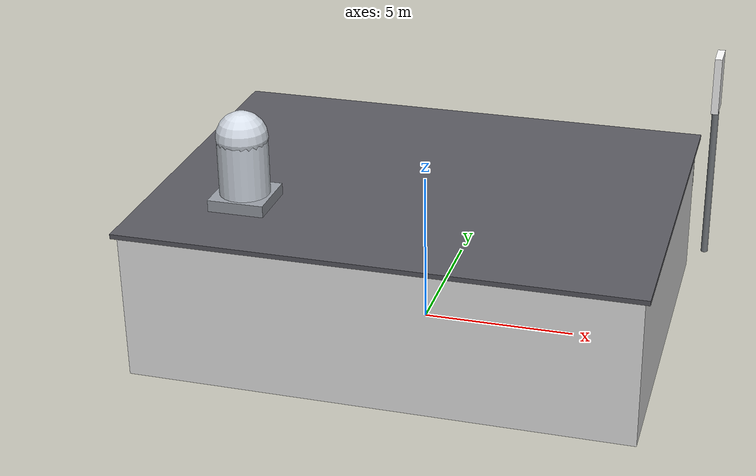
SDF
<?xml version="1.0" ?>
<sdf version="1.8">
  <model name="convenience_store_711">
    <static>true</static>
    <link name="store_link">

      <!-- ==================== 物理碰撞剛體 (Decoupled Primitives) ==================== -->
      <!-- 主量體剛體 (16m x 12m x 4.8m) -->
      <collision name="store_col">
        <pose>0 0 2.4 0 0 0</pose>
        <geometry><box><size>16.0 12.0 4.8</size></box></geometry>
      </collision>
      <!-- 立式獨立高空招牌立柱剛體 -->
      <collision name="pylon_pole_col">
        <pose>8.5 7.2 3.5 0 0 0</pose>
        <geometry><cylinder><radius>0.15</radius><length>7.0</length></cylinder></geometry>
      </collision>

      <!-- ==================== 視覺主體：7-ELEVEN 建築本體 ==================== -->
      <visual name="store_walls">
        <pose>0 0 2.4 0 0 0</pose>
        <geometry><box><size>16.0 12.0 4.8</size></box></geometry>
        <material>
          <ambient>0.88 0.88 0.88 1</ambient>
          <diffuse>0.92 0.92 0.92 1</diffuse>
        </material>
      </visual>

      <!-- 頂部女兒牆收邊 (Parapet Cap) -->
      <visual name="roof_trim">
        <pose>0 0 4.85 0 0 0</pose>
        <geometry><box><size>16.3 12.3 0.15</size></box></geometry>
        <material><ambient>0.3 0.3 0.32 1</ambient><diffuse>0.35 0.35 0.38 1</diffuse></material>
      </visual>

      <!-- ==================== 7-ELEVEN 台灣特色高清擬真店招與門面 (Photo-Real PBR Signboards) ==================== -->
      <!-- 1. 正面橫式發光主招牌 (Fascia Signboard: 15.0m x 1.4m, 比例 10.71:1 完全吻合 1500x140 貼圖) -->
      <visual name="seven_fascia_vis">
        <pose>0 6.08 4.0 0 0 0</pose>
        <geometry><box><size>15.0 0.12 1.4</size></box></geometry>
        <material>
          <diffuse>1 1 1 1</diffuse>
          <emissive>0.45 0.45 0.45 1</emissive>
          <pbr>
            <metal>
              <albedo_map>model://convenience_store_711/materials/textures/seven_eleven_fascia_sign.png</albedo_map>
              <roughness>0.20</roughness>
              <metalness>0.05</metalness>
            </metal>
          </pbr>
        </material>
      </visual>

      <!-- 2. 店面落地大片採光玻璃與自動門 (Storefront Glass Curtain & Automatic Doors) -->
      <visual name="storefront_glass">
        <pose>0 6.04 1.6 0 0 0</pose>
        <geometry><box><size>15.0 0.08 3.2</size></box></geometry>
        <material>
          <ambient>0.2 0.35 0.4 0.85</ambient>
          <diffuse>0.3 0.45 0.5 0.85</diffuse>
          <specular>0.9 0.95 1.0 1</specular>
        </material>
      </visual>
      <!-- 自動門深灰色金屬門框 (Door Frame) -->
      <visual name="storefront_doorframe">
        <pose>0 6.07 1.6 0 0 0</pose>
        <geometry><box><size>3.6 0.1 3.2</size></box></geometry>
        <material><ambient>0.2 0.2 0.22 1</ambient><diffuse>0.25 0.25 0.28 1</diffuse></material>
      </visual>

      <!-- 3. 建築側懸直立雙面發光店招 (Protruding Blade Signboard: 0.8m x 1.6m, 比例 1:2 吻合 512x1024 貼圖) -->
      <visual name="seven_blade_vis">
        <pose>7.9 6.2 3.6 0 0 1.5708</pose>
        <geometry><box><size>0.8 0.12 1.6</size></box></geometry>
        <material>
          <diffuse>1 1 1 1</diffuse>
          <emissive>0.5 0.5 0.5 1</emissive>
          <pbr>
            <metal>
              <albedo_map>model://convenience_store_711/materials/textures/seven_eleven_blade_sign.png</albedo_map>
              <roughness>0.20</roughness>
              <metalness>0.05</metalness>
            </metal>
          </pbr>
        </material>
      </visual>

      <!-- ==================== 經典雙面立式高空發光招牌立柱 (Pylon Sign Tower) ==================== -->
      <visual name="pylon_pole">
        <pose>8.5 7.2 3.5 0 0 0</pose>
        <geometry><cylinder><radius>0.12</radius><length>7.0</length></cylinder></geometry>
        <material><ambient>0.4 0.42 0.45 1</ambient><diffuse>0.48 0.50 0.52 1</diffuse></material>
      </visual>

      <!-- 高空發光大燈箱 (High-mast Lightbox: 1.0m x 2.0m, 比例 1:2 完全吻合 512x1024 貼圖) -->
      <visual name="pylon_lightbox">
        <pose>8.5 7.2 6.5 0 0 1.5708</pose>
        <geometry><box><size>1.0 0.25 2.0</size></box></geometry>
        <material>
          <diffuse>1 1 1 1</diffuse>
          <emissive>0.55 0.55 0.55 1</emissive>
          <pbr>
            <metal>
              <albedo_map>model://convenience_store_711/materials/textures/seven_eleven_blade_sign.png</albedo_map>
              <roughness>0.20</roughness>
              <metalness>0.05</metalness>
            </metal>
          </pbr>
        </material>
      </visual>

      <!-- ==================== 台灣特色：頂樓不鏽鋼白鐵水塔 (Stainless Steel Water Tank) ==================== -->
      <!-- 水塔角鋼腳架 -->
      <visual name="water_tank_stand">
        <pose>-5.0 -3.0 5.1 0 0 0</pose>
        <geometry><box><size>1.8 1.8 0.4</size></box></geometry>
        <material><ambient>0.5 0.52 0.55 1</ambient><diffuse>0.6 0.62 0.65 1</diffuse></material>
      </visual>
      <!-- 白鐵水塔桶身 (直徑 1.6m, 高 1.8m) -->
      <visual name="water_tank_body">
        <pose>-5.0 -3.0 6.2 0 0 0</pose>
        <geometry><cylinder><radius>0.80</radius><length>1.80</length></cylinder></geometry>
        <material>
          <ambient>0.75 0.78 0.82 1</ambient>
          <diffuse>0.85 0.88 0.92 1</diffuse>
          <pbr>
            <metal>
              <roughness>0.15</roughness>
              <metalness>0.88</metalness>
            </metal>
          </pbr>
        </material>
      </visual>
      <!-- 白鐵水塔圓拱頂蓋 -->
      <visual name="water_tank_dome">
        <pose>-5.0 -3.0 7.15 0 0 0</pose>
        <geometry><sphere><radius>0.82</radius></sphere></geometry>
        <material>
          <ambient>0.75 0.78 0.82 1</ambient>
          <diffuse>0.85 0.88 0.92 1</diffuse>
          <pbr>
            <metal>
              <roughness>0.15</roughness>
              <metalness>0.88</metalness>
            </metal>
          </pbr>
        </material>
      </visual>

    </link>
  </model>
</sdf>
